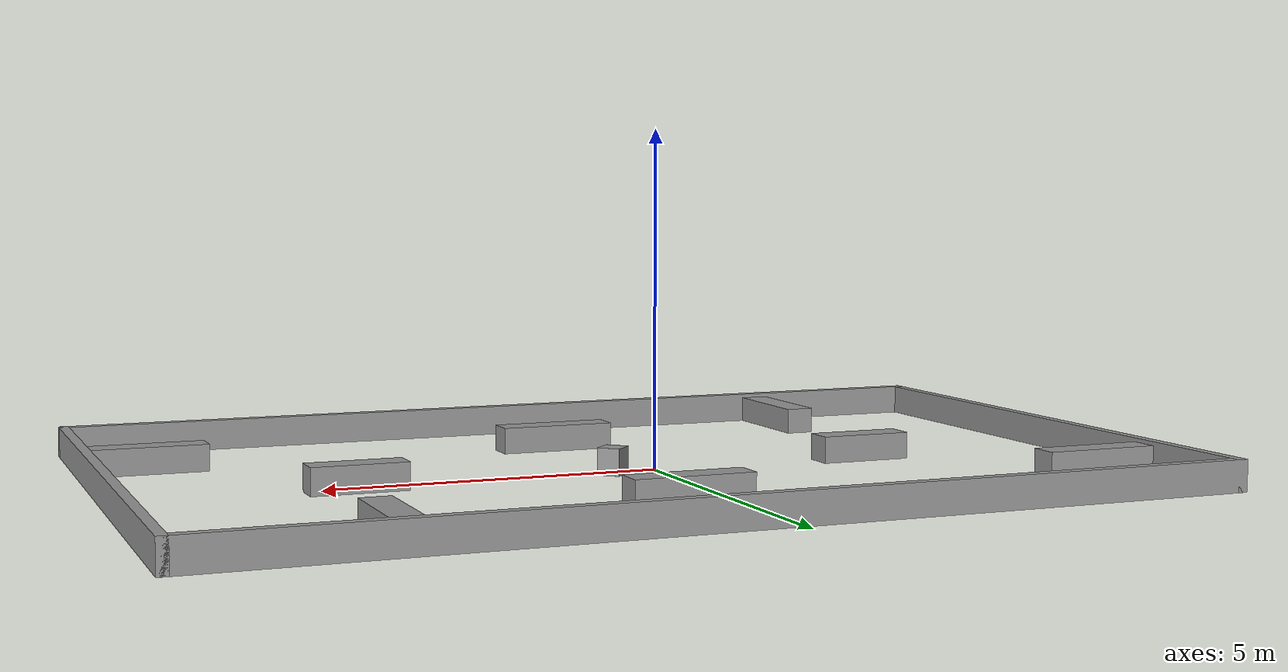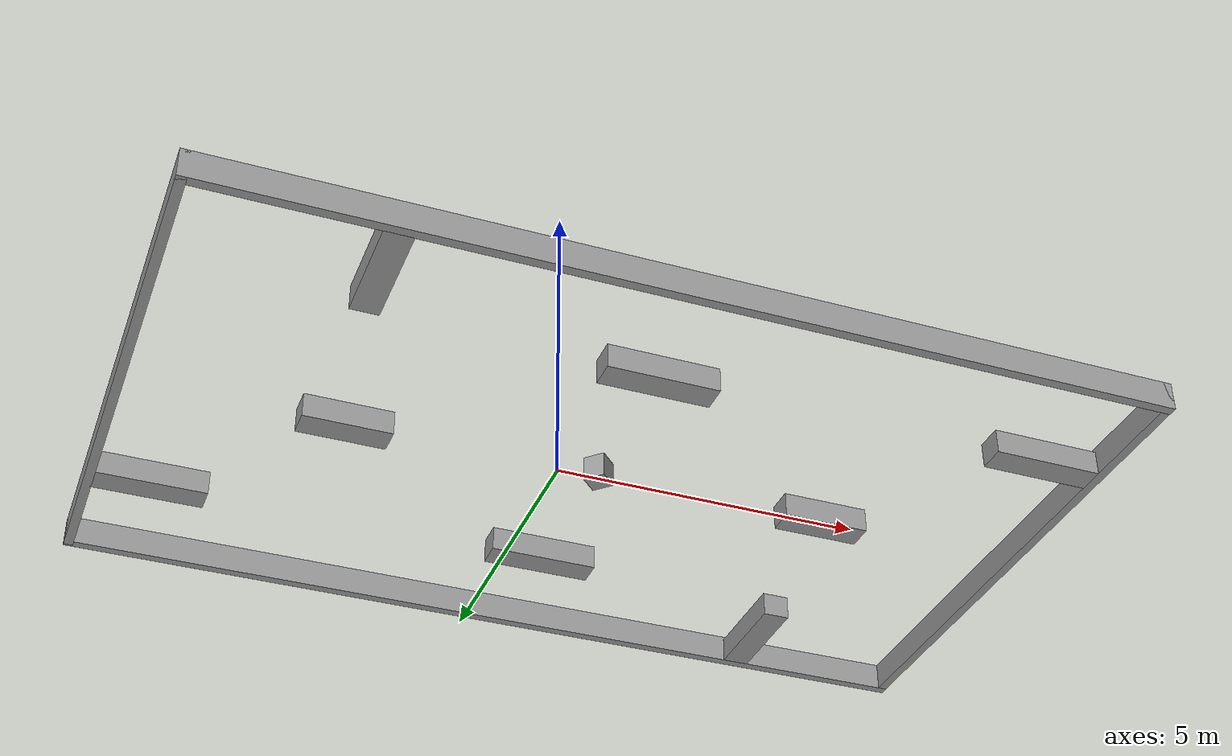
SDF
<?xml version='1.0'?>
<sdf version='1.6'>
  <model name='2020map'>
    <pose frame=''>0.605 0.075 0 0 -0 0</pose>
    <link name='Wall_11'>
      <collision name='Wall_11_Collision'>
        <geometry>
          <box>
            <size>9.516 0.15 0.46</size>
          </box>
        </geometry>
        <pose frame=''>0 0 0.23 0 -0 0</pose>
      </collision>
      <visual name='Wall_11_Visual'>
        <pose frame=''>0 0 0.23 0 -0 0</pose>
        <geometry>
          <box>
            <size>9.516 0.15 0.46</size>
          </box>
        </geometry>
        <material>
          <script>
            <uri>file://media/materials/scripts/gazebo.material</uri>
            <name>Gazebo/Grey</name>
          </script>
          <ambient>1 1 1 1</ambient>
        </material>
      </visual>
      <pose frame=''>-7.325 0 0 0 0 -1.5708</pose>
    </link>
    <link name='Wall_12'>
      <collision name='Wall_12_Collision'>
        <geometry>
          <box>
            <size>14.8 0.15 0.46</size>
          </box>
        </geometry>
        <pose frame=''>0 0 0.23 0 -0 0</pose>
      </collision>
      <visual name='Wall_12_Visual'>
        <pose frame=''>0 0 0.23 0 -0 0</pose>
        <geometry>
          <box>
            <size>14.8 0.15 0.46</size>
          </box>
        </geometry>
        <material>
          <script>
            <uri>file://media/materials/scripts/gazebo.material</uri>
            <name>Gazebo/Grey</name>
          </script>
          <ambient>1 1 1 1</ambient>
        </material>
      </visual>
      <pose frame=''>0 -4.683 0 0 -0 0</pose>
    </link>
    <link name='Wall_16'>
      <collision name='Wall_16_Collision'>
        <geometry>
          <box>
            <size>14.8 0.15 0.46</size>
          </box>
        </geometry>
        <pose frame=''>0 0 0.23 0 -0 0</pose>
      </collision>
      <visual name='Wall_16_Visual'>
        <pose frame=''>0 0 0.23 0 -0 0</pose>
        <geometry>
          <box>
            <size>14.8 0.15 0.46</size>
          </box>
        </geometry>
        <material>
          <script>
            <uri>file://media/materials/scripts/gazebo.material</uri>
            <name>Gazebo/Grey</name>
          </script>
          <ambient>1 1 1 1</ambient>
        </material>
      </visual>
      <pose frame=''>0 4.683 0 0 -0 0</pose>
    </link>
    <link name='Wall_17'>
      <collision name='Wall_17_Collision'>
        <geometry>
          <box>
            <size>9.516 0.15 0.46</size>
          </box>
        </geometry>
        <pose frame=''>0 0 0.23 0 -0 0</pose>
      </collision>
      <visual name='Wall_17_Visual'>
        <pose frame=''>0 0 0.23 0 -0 0</pose>
        <geometry>
          <box>
            <size>9.516 0.15 0.46</size>
          </box>
        </geometry>
        <material>
          <script>
            <uri>file://media/materials/scripts/gazebo.material</uri>
            <name>Gazebo/Grey</name>
          </script>
          <ambient>1 1 1 1</ambient>
        </material>
      </visual>
      <pose frame=''>7.325 0 0 0 0 -1.5708</pose>
    </link>
    <link name='Wall_19'>
      <collision name='Wall_19_Collision'>
        <geometry>
          <box>
            <size>1.762 0.44 0.4</size>
          </box>
        </geometry>
        <pose frame=''>0 0 0.2 0 -0 0</pose>
      </collision>
      <visual name='Wall_19_Visual'>
        <pose frame=''>0 0 0.2 0 -0 0</pose>
        <geometry>
          <box>
            <size>1.762 0.44 0.4</size>
          </box>
        </geometry>
        <material>
          <script>
            <uri>file://media/materials/scripts/gazebo.material</uri>
            <name>Gazebo/Grey</name>
          </script>
          <ambient>1 1 1 1</ambient>
        </material>
      </visual>
      <pose frame=''>0.057 2.657 0 0 -0 0</pose>
    </link>
    <link name='Wall_22'>
      <collision name='Wall_22_Collision'>
        <geometry>
          <box>
            <size>1.762 0.44 0.4</size>
          </box>
        </geometry>
        <pose frame=''>0 0 0.2 0 -0 0</pose>
      </collision>
      <visual name='Wall_22_Visual'>
        <pose frame=''>0 0 0.2 0 -0 0</pose>
        <geometry>
          <box>
            <size>1.762 0.44 0.4</size>
          </box>
        </geometry>
        <material>
          <script>
            <uri>file://media/materials/scripts/gazebo.material</uri>
            <name>Gazebo/Grey</name>
          </script>
          <ambient>1 1 1 1</ambient>
        </material>
      </visual>
      <pose frame=''>-6.385 2.657 0 0 -0 0</pose>
    </link>
    <link name='Wall_24'>
      <collision name='Wall_24_Collision'>
        <geometry>
          <box>
            <size>1.409 0.44 0.4</size>
          </box>
        </geometry>
        <pose frame=''>0 0 0.2 0 -0 0</pose>
      </collision>
      <visual name='Wall_24_Visual'>
        <pose frame=''>0 0 0.2 0 -0 0</pose>
        <geometry>
          <box>
            <size>1.409 0.44 0.4</size>
          </box>
        </geometry>
        <material>
          <script>
            <uri>file://media/materials/scripts/gazebo.material</uri>
            <name>Gazebo/Grey</name>
          </script>
          <ambient>1 1 1 1</ambient>
        </material>
      </visual>
      <pose frame=''>-3.9335 0.074 0 0 -0 3.14159</pose>
    </link>
    <link name='Wall_26'>
      <collision name='Wall_26_Collision'>
        <geometry>
          <box>
            <size>1.409 0.44 0.4</size>
          </box>
        </geometry>
        <pose frame=''>0 0 0.2 0 -0 0</pose>
      </collision>
      <visual name='Wall_26_Visual'>
        <pose frame=''>0 0 0.2 0 -0 0</pose>
        <geometry>
          <box>
            <size>1.409 0.44 0.4</size>
          </box>
        </geometry>
        <material>
          <script>
            <uri>file://media/materials/scripts/gazebo.material</uri>
            <name>Gazebo/Grey</name>
          </script>
          <ambient>1 1 1 1</ambient>
        </material>
      </visual>
      <pose frame=''>3.9335 0.074 0 0 -0 0</pose>
    </link>
    <link name='Wall_28'>
      <collision name='Wall_28_Collision'>
        <geometry>
          <box>
            <size>1.762 0.44 0.4</size>
          </box>
        </geometry>
        <pose frame=''>0 0 0.2 0 -0 0</pose>
      </collision>
      <visual name='Wall_28_Visual'>
        <pose frame=''>0 0 0.2 0 -0 0</pose>
        <geometry>
          <box>
            <size>1.762 0.44 0.4</size>
          </box>
        </geometry>
        <material>
          <script>
            <uri>file://media/materials/scripts/gazebo.material</uri>
            <name>Gazebo/Grey</name>
          </script>
          <ambient>1 1 1 1</ambient>
        </material>
      </visual>
      <pose frame=''>6.3838 -2.657 0 0 -0 3.14159</pose>
    </link>
    <link name='Wall_30'>
      <collision name='Wall_30_Collision'>
        <geometry>
          <box>
            <size>1.762 0.44 0.4</size>
          </box>
        </geometry>
        <pose frame=''>0 0 0.2 0 -0 0</pose>
      </collision>
      <visual name='Wall_30_Visual'>
        <pose frame=''>0 0 0.2 0 -0 0</pose>
        <geometry>
          <box>
            <size>1.762 0.44 0.4</size>
          </box>
        </geometry>
        <material>
          <script>
            <uri>file://media/materials/scripts/gazebo.material</uri>
            <name>Gazebo/Grey</name>
          </script>
          <ambient>1 1 1 1</ambient>
        </material>
      </visual>
      <pose frame=''>0.057 -2.633 0 0 -0 0</pose>
    </link>
    <link name='Wall_32'>
      <collision name='Wall_32_Collision'>
        <geometry>
          <box>
            <size>1.762 0.44 0.4</size>
          </box>
        </geometry>
        <pose frame=''>0 0 0.2 0 -0 0</pose>
      </collision>
      <visual name='Wall_32_Visual'>
        <pose frame=''>0 0 0.2 0 -0 0</pose>
        <geometry>
          <box>
            <size>1.762 0.44 0.4</size>
          </box>
        </geometry>
        <material>
          <script>
            <uri>file://media/materials/scripts/gazebo.material</uri>
            <name>Gazebo/Grey</name>
          </script>
          <ambient>1 1 1 1</ambient>
        </material>
      </visual>
      <pose frame=''>-4.418 -3.734 0 0 -0 1.5708</pose>
    </link>
    <link name='Wall_34'>
      <collision name='Wall_34_Collision'>
        <geometry>
          <box>
            <size>1.762 0.44 0.4</size>
          </box>
        </geometry>
        <pose frame=''>0 0 0.2 0 -0 0</pose>
      </collision>
      <visual name='Wall_34_Visual'>
        <pose frame=''>0 0 0.2 0 -0 0</pose>
        <geometry>
          <box>
            <size>1.762 0.44 0.4</size>
          </box>
        </geometry>
        <material>
          <script>
            <uri>file://media/materials/scripts/gazebo.material</uri>
            <name>Gazebo/Grey</name>
          </script>
          <ambient>1 1 1 1</ambient>
        </material>
      </visual>
      <pose frame=''>4.418 3.734 0 0 0 -1.5708</pose>
    </link>
    <link name='Wall_36'>
      <collision name='Wall_36_Collision'>
        <geometry>
          <box>
            <size>0.351414 0.35 0.4</size>
          </box>
        </geometry>
        <pose frame=''>0 0 0.2 0 -0 0</pose>
      </collision>
      <visual name='Wall_36_Visual'>
        <pose frame=''>0 0 0.2 0 -0 0</pose>
        <geometry>
          <box>
            <size>0.351414 0.35 0.4</size>
          </box>
        </geometry>
        <material>
          <script>
            <uri>file://media/materials/scripts/gazebo.material</uri>
            <name>Gazebo/Grey</name>
          </script>
          <ambient>1 1 1 1</ambient>
        </material>
      </visual>
      <pose frame=''>0.1085 0.0255 0 0 -0 0.785398</pose>
    </link>
    <static>1</static>
  </model>
</sdf>
